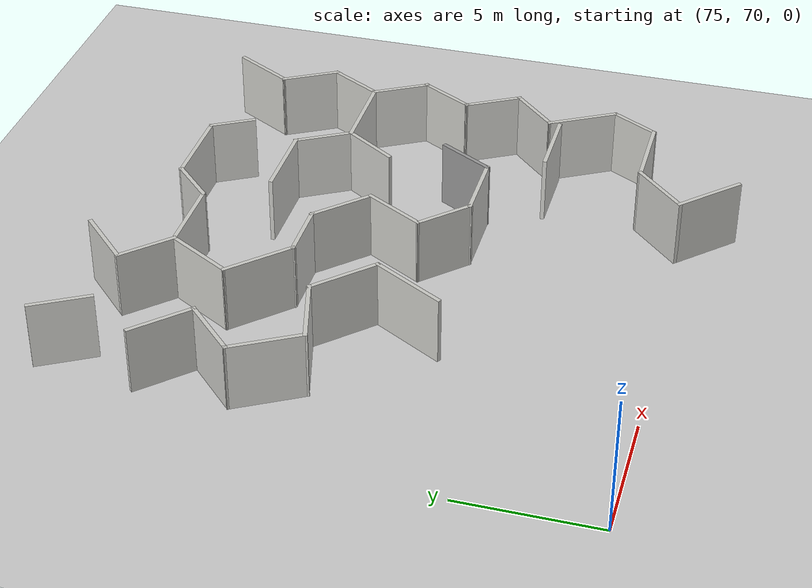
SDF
<sdf version="1.6">
 <world name="default">
  <model name="ground_plane">
   <pose>50 50 0 0 -0 0</pose>
   <static>1</static>
   <link name="link">
    <collision name="collision">
     <geometry><plane><normal>0 0 1</normal><size>100 100</size></plane></geometry>
     <surface><friction><ode><mu>100</mu><mu2>50</mu2></ode></friction></surface>
    </collision>
    <visual name="visual">
     <cast_shadows>0</cast_shadows>
     <geometry><plane><normal>0 0 1</normal><size>100 100</size></plane></geometry>
     <material>
      <script><uri>file://media/materials/scripts/gazebo.material</uri><name>Gazebo/Grey</name></script>
     </material>
    </visual>
   </link>
  </model>
  <model name="maze_1_0">
   <pose>55.5762 81.9377 0 0 -0 3.14</pose>
   <link name="Wall_107">
    <collision name="Wall_107_Collision">
     <geometry><box><size>2.25 0.15 2.5</size></box></geometry>
     <pose>0 0 1.25 0 -0 0</pose>
    </collision>
    <visual name="Wall_107_Visual">
     <pose>0 0 1.25 0 -0 0</pose>
     <geometry><box><size>2.25 0.15 2.5</size></box></geometry>
     <material>
      <script><uri>file://media/materials/scripts/gazebo.material</uri><name>Gazebo/CeilingTiled</name></script>
      <ambient>1 1 1 1</ambient>
     </material>
     <meta><layer>0</layer></meta>
    </visual>
    <pose>-22.6837 -7.08881 0 0 -0 -1.0472</pose>
   </link>
   <link name="Wall_115">
    <collision name="Wall_115_Collision">
     <geometry><box><size>2.5 0.15 2.5</size></box></geometry>
     <pose>0 0 1.25 0 -0 0</pose>
    </collision>
    <visual name="Wall_115_Visual">
     <pose>0 0 1.25 0 -0 0</pose>
     <geometry><box><size>2.5 0.15 2.5</size></box></geometry>
     <material>
      <script><uri>file://media/materials/scripts/gazebo.material</uri><name>Gazebo/CeilingTiled</name></script>
      <ambient>1 1 1 1</ambient>
     </material>
     <meta><layer>0</layer></meta>
    </visual>
    <pose>-22.6341 -3.53644 0 0 -0 2.35619</pose>
   </link>
   <link name="Wall_116">
    <collision name="Wall_116_Collision">
     <geometry><box><size>2.5 0.15 2.5</size></box></geometry>
     <pose>0 0 1.25 0 -0 0</pose>
    </collision>
    <visual name="Wall_116_Visual">
     <pose>0 0 1.25 0 -0 0</pose>
     <geometry><box><size>2.5 0.15 2.5</size></box></geometry>
     <material>
      <script><uri>file://media/materials/scripts/gazebo.material</uri><name>Gazebo/CeilingTiled</name></script>
      <ambient>1 1 1 1</ambient>
     </material>
     <meta><layer>0</layer></meta>
    </visual>
    <pose>-22.6341 -1.87474 0 0 -0 0.785398</pose>
   </link>
   <link name="Wall_117">
    <collision name="Wall_117_Collision">
     <geometry><box><size>2.75 0.15 2.5</size></box></geometry>
     <pose>0 0 1.25 0 -0 0</pose>
    </collision>
    <visual name="Wall_117_Visual">
     <pose>0 0 1.25 0 -0 0</pose>
     <geometry><box><size>2.75 0.15 2.5</size></box></geometry>
     <material>
      <script><uri>file://media/materials/scripts/gazebo.material</uri><name>Gazebo/CeilingTiled</name></script>
      <ambient>1 1 1 1</ambient>
     </material>
     <meta><layer>0</layer></meta>
    </visual>
    <pose>-22.4533 0.081949 0 0 -0 2.0944</pose>
   </link>
   <link name="Wall_118">
    <collision name="Wall_118_Collision">
     <geometry><box><size>2.75 0.15 2.5</size></box></geometry>
     <pose>0 0 1.25 0 -0 0</pose>
    </collision>
    <visual name="Wall_118_Visual">
     <pose>0 0 1.25 0 -0 0</pose>
     <geometry><box><size>2.75 0.15 2.5</size></box></geometry>
     <material>
      <script><uri>file://media/materials/scripts/gazebo.material</uri><name>Gazebo/CeilingTiled</name></script>
      <ambient>1 1 1 1</ambient>
     </material>
     <meta><layer>0</layer></meta>
    </visual>
    <pose>-24.359 0.871317 0 0 -0 -2.87979</pose>
   </link>
   <link name="Wall_119">
    <collision name="Wall_119_Collision">
     <geometry><box><size>2.75 0.15 2.5</size></box></geometry>
     <pose>0 0 1.25 0 -0 0</pose>
    </collision>
    <visual name="Wall_119_Visual">
     <pose>0 0 1.25 0 -0 0</pose>
     <geometry><box><size>2.75 0.15 2.5</size></box></geometry>
     <material>
      <script><uri>file://media/materials/scripts/gazebo.material</uri><name>Gazebo/CeilingTiled</name></script>
      <ambient>1 1 1 1</ambient>
     </material>
     <meta><layer>0</layer></meta>
    </visual>
    <pose>-26.5339 1.45409 0 0 -0 2.35619</pose>
   </link>
   <link name="Wall_120">
    <collision name="Wall_120_Collision">
     <geometry><box><size>3 0.15 2.5</size></box></geometry>
     <pose>0 0 1.25 0 -0 0</pose>
    </collision>
    <visual name="Wall_120_Visual">
     <pose>0 0 1.25 0 -0 0</pose>
     <geometry><box><size>3 0.15 2.5</size></box></geometry>
     <material>
      <script><uri>file://media/materials/scripts/gazebo.material</uri><name>Gazebo/CeilingTiled</name></script>
      <ambient>1 1 1 1</ambient>
     </material>
     <meta><layer>0</layer></meta>
    </visual>
    <pose>-26.7407 3.60742 0 0 -0 1.0472</pose>
   </link>
   <link name="Wall_62">
    <collision name="Wall_62_Collision">
     <geometry><box><size>2.5 0.15 2.5</size></box></geometry>
     <pose>0 0 1.25 0 -0 0</pose>
    </collision>
    <visual name="Wall_62_Visual">
     <pose>0 0 1.25 0 -0 0</pose>
     <geometry><box><size>2.5 0.15 2.5</size></box></geometry>
     <material>
      <script><uri>file://media/materials/scripts/gazebo.material</uri><name>Gazebo/CeilingTiled</name></script>
      <ambient>1 1 1 1</ambient>
     </material>
     <meta><layer>0</layer></meta>
    </visual>
    <pose>-38.9155 -5.5485 0 0 -0 1.0472</pose>
   </link>
   <link name="Wall_63">
    <collision name="Wall_63_Collision">
     <geometry><box><size>2.25 0.15 2.5</size></box></geometry>
     <pose>0 0 1.25 0 -0 0</pose>
    </collision>
    <visual name="Wall_63_Visual">
     <pose>0 0 1.25 0 -0 0</pose>
     <geometry><box><size>2.25 0.15 2.5</size></box></geometry>
     <material>
      <script><uri>file://media/materials/scripts/gazebo.material</uri><name>Gazebo/CeilingTiled</name></script>
      <ambient>1 1 1 1</ambient>
     </material>
     <meta><layer>0</layer></meta>
    </visual>
    <pose>-38.853 -3.6216 0 0 -0 2.0944</pose>
   </link>
   <link name="Wall_64">
    <collision name="Wall_64_Collision">
     <geometry><box><size>2.25 0.15 2.5</size></box></geometry>
     <pose>0 0 1.25 0 -0 0</pose>
    </collision>
    <visual name="Wall_64_Visual">
     <pose>0 0 1.25 0 -0 0</pose>
     <geometry><box><size>2.25 0.15 2.5</size></box></geometry>
     <material>
      <script><uri>file://media/materials/scripts/gazebo.material</uri><name>Gazebo/CeilingTiled</name></script>
      <ambient>1 1 1 1</ambient>
     </material>
     <meta><layer>0</layer></meta>
    </visual>
    <pose>-38.853 -1.80294 0 0 -0 1.0472</pose>
   </link>
   <link name="Wall_65">
    <collision name="Wall_65_Collision">
     <geometry><box><size>3.25 0.15 2.5</size></box></geometry>
     <pose>0 0 1.25 0 -0 0</pose>
    </collision>
    <visual name="Wall_65_Visual">
     <pose>0 0 1.25 0 -0 0</pose>
     <geometry><box><size>3.25 0.15 2.5</size></box></geometry>
     <material>
      <script><uri>file://media/materials/scripts/gazebo.material</uri><name>Gazebo/CeilingTiled</name></script>
      <ambient>1 1 1 1</ambient>
     </material>
     <meta><layer>0</layer></meta>
    </visual>
    <pose>-36.778 -0.893615 0 0 -0 0</pose>
   </link>
   <link name="Wall_66">
    <collision name="Wall_66_Collision">
     <geometry><box><size>2.25 0.15 2.5</size></box></geometry>
     <pose>0 0 1.25 0 -0 0</pose>
    </collision>
    <visual name="Wall_66_Visual">
     <pose>0 0 1.25 0 -0 0</pose>
     <geometry><box><size>2.25 0.15 2.5</size></box></geometry>
     <material>
      <script><uri>file://media/materials/scripts/gazebo.material</uri><name>Gazebo/CeilingTiled</name></script>
      <ambient>1 1 1 1</ambient>
     </material>
     <meta><layer>0</layer></meta>
    </visual>
    <pose>-34.703 -1.80294 0 0 -0 -1.0472</pose>
   </link>
   <link name="Wall_67">
    <collision name="Wall_67_Collision">
     <geometry><box><size>3 0.15 2.5</size></box></geometry>
     <pose>0 0 1.25 0 -0 0</pose>
    </collision>
    <visual name="Wall_67_Visual">
     <pose>0 0 1.25 0 -0 0</pose>
     <geometry><box><size>3 0.15 2.5</size></box></geometry>
     <material>
      <script><uri>file://media/materials/scripts/gazebo.material</uri><name>Gazebo/CeilingTiled</name></script>
      <ambient>1 1 1 1</ambient>
     </material>
     <meta><layer>0</layer></meta>
    </visual>
    <pose>-32.753 -2.71227 0 0 -0 0</pose>
   </link>
   <link name="Wall_69">
    <collision name="Wall_69_Collision">
     <geometry><box><size>2.3062 0.15 2.5</size></box></geometry>
     <pose>0 0 1.25 0 -0 0</pose>
    </collision>
    <visual name="Wall_69_Visual">
     <pose>0 0 1.25 0 -0 0</pose>
     <geometry><box><size>2.3062 0.15 2.5</size></box></geometry>
     <material>
      <script><uri>file://media/materials/scripts/gazebo.material</uri><name>Gazebo/CeilingTiled</name></script>
      <ambient>1 1 1 1</ambient>
     </material>
     <meta><layer>0</layer></meta>
    </visual>
    <pose>-34.6295 0.003073 0 0 -0 -2.15938</pose>
   </link>
   <link name="Wall_71">
    <collision name="Wall_71_Collision">
     <geometry><box><size>2.25 0.15 2.5</size></box></geometry>
     <pose>0 0 1.25 0 -0 0</pose>
    </collision>
    <visual name="Wall_71_Visual">
     <pose>0 0 1.25 0 -0 0</pose>
     <geometry><box><size>2.25 0.15 2.5</size></box></geometry>
     <material>
      <script><uri>file://media/materials/scripts/gazebo.material</uri><name>Gazebo/CeilingTiled</name></script>
      <ambient>1 1 1 1</ambient>
     </material>
     <meta><layer>0</layer></meta>
    </visual>
    <pose>-38.853 0.015712 0 0 -0 2.0944</pose>
   </link>
   <link name="Wall_72">
    <collision name="Wall_72_Collision">
     <geometry><box><size>2.25 0.15 2.5</size></box></geometry>
     <pose>0 0 1.25 0 -0 0</pose>
    </collision>
    <visual name="Wall_72_Visual">
     <pose>0 0 1.25 0 -0 0</pose>
     <geometry><box><size>2.25 0.15 2.5</size></box></geometry>
     <material>
      <script><uri>file://media/materials/scripts/gazebo.material</uri><name>Gazebo/CeilingTiled</name></script>
      <ambient>1 1 1 1</ambient>
     </material>
     <meta><layer>0</layer></meta>
    </visual>
    <pose>-38.853 1.83437 0 0 -0 1.0472</pose>
   </link>
   <link name="Wall_73">
    <collision name="Wall_73_Collision">
     <geometry><box><size>2.25 0.15 2.5</size></box></geometry>
     <pose>0 0 1.25 0 -0 0</pose>
    </collision>
    <visual name="Wall_73_Visual">
     <pose>0 0 1.25 0 -0 0</pose>
     <geometry><box><size>2.25 0.15 2.5</size></box></geometry>
     <material>
      <script><uri>file://media/materials/scripts/gazebo.material</uri><name>Gazebo/CeilingTiled</name></script>
      <ambient>1 1 1 1</ambient>
     </material>
     <meta><layer>0</layer></meta>
    </visual>
    <pose>-38.853 3.65302 0 0 -0 2.0944</pose>
   </link>
   <link name="Wall_74">
    <collision name="Wall_74_Collision">
     <geometry><box><size>2.25 0.15 2.5</size></box></geometry>
     <pose>0 0 1.25 0 -0 0</pose>
    </collision>
    <visual name="Wall_74_Visual">
     <pose>0 0 1.25 0 -0 0</pose>
     <geometry><box><size>2.25 0.15 2.5</size></box></geometry>
     <material>
      <script><uri>file://media/materials/scripts/gazebo.material</uri><name>Gazebo/CeilingTiled</name></script>
      <ambient>1 1 1 1</ambient>
     </material>
     <meta><layer>0</layer></meta>
    </visual>
    <pose>-38.6356 5.30481 0 0 -0 0.785398</pose>
   </link>
   <link name="Wall_75">
    <collision name="Wall_75_Collision">
     <geometry><box><size>2.75 0.15 2.5</size></box></geometry>
     <pose>0 0 1.25 0 -0 0</pose>
    </collision>
    <visual name="Wall_75_Visual">
     <pose>0 0 1.25 0 -0 0</pose>
     <geometry><box><size>2.75 0.15 2.5</size></box></geometry>
     <material>
      <script><uri>file://media/materials/scripts/gazebo.material</uri><name>Gazebo/CeilingTiled</name></script>
      <ambient>1 1 1 1</ambient>
     </material>
     <meta><layer>0</layer></meta>
    </visual>
    <pose>-38.5431 7.1731 0 0 -0 2.0944</pose>
   </link>
   <link name="Wall_76">
    <collision name="Wall_76_Collision">
     <geometry><box><size>2 0.15 2.5</size></box></geometry>
     <pose>0 0 1.25 0 -0 0</pose>
    </collision>
    <visual name="Wall_76_Visual">
     <pose>0 0 1.25 0 -0 0</pose>
     <geometry><box><size>2 0.15 2.5</size></box></geometry>
     <material>
      <script><uri>file://media/materials/scripts/gazebo.material</uri><name>Gazebo/CeilingTiled</name></script>
      <ambient>1 1 1 1</ambient>
     </material>
     <meta><layer>0</layer></meta>
    </visual>
    <pose>-38.7306 9.10001 0 0 -0 1.0472</pose>
   </link>
   <link name="Wall_77">
    <collision name="Wall_77_Collision">
     <geometry><box><size>3 0.15 2.5</size></box></geometry>
     <pose>0 0 1.25 0 -0 0</pose>
    </collision>
    <visual name="Wall_77_Visual">
     <pose>0 0 1.25 0 -0 0</pose>
     <geometry><box><size>3 0.15 2.5</size></box></geometry>
     <material>
      <script><uri>file://media/materials/scripts/gazebo.material</uri><name>Gazebo/CeilingTiled</name></script>
      <ambient>1 1 1 1</ambient>
     </material>
     <meta><layer>0</layer></meta>
    </visual>
    <pose>-36.8431 9.90108 0 0 -0 0</pose>
   </link>
   <link name="Wall_78">
    <collision name="Wall_78_Collision">
     <geometry><box><size>2.5 0.15 2.5</size></box></geometry>
     <pose>0 0 1.25 0 -0 0</pose>
    </collision>
    <visual name="Wall_78_Visual">
     <pose>0 0 1.25 0 -0 0</pose>
     <geometry><box><size>2.5 0.15 2.5</size></box></geometry>
     <material>
      <script><uri>file://media/materials/scripts/gazebo.material</uri><name>Gazebo/CeilingTiled</name></script>
      <ambient>1 1 1 1</ambient>
     </material>
     <meta><layer>0</layer></meta>
    </visual>
    <pose>-34.5873 10.7319 0 0 -0 0.785398</pose>
   </link>
   <link name="Wall_79">
    <collision name="Wall_79_Collision">
     <geometry><box><size>2.75 0.15 2.5</size></box></geometry>
     <pose>0 0 1.25 0 -0 0</pose>
    </collision>
    <visual name="Wall_79_Visual">
     <pose>0 0 1.25 0 -0 0</pose>
     <geometry><box><size>2.75 0.15 2.5</size></box></geometry>
     <material>
      <script><uri>file://media/materials/scripts/gazebo.material</uri><name>Gazebo/CeilingTiled</name></script>
      <ambient>1 1 1 1</ambient>
     </material>
     <meta><layer>0</layer></meta>
    </visual>
    <pose>-34.6757 12.482 0 0 -0 2.35619</pose>
   </link>
   <link name="Wall_81">
    <collision name="Wall_81_Collision">
     <geometry><box><size>2.75 0.15 2.5</size></box></geometry>
     <pose>0 0 1.25 0 -0 0</pose>
    </collision>
    <visual name="Wall_81_Visual">
     <pose>0 0 1.25 0 -0 0</pose>
     <geometry><box><size>2.75 0.15 2.5</size></box></geometry>
     <material>
      <script><uri>file://media/materials/scripts/gazebo.material</uri><name>Gazebo/CeilingTiled</name></script>
      <ambient>1 1 1 1</ambient>
     </material>
     <meta><layer>0</layer></meta>
    </visual>
    <pose>-36.5515 6.43296 0 0 -0 3.14159</pose>
   </link>
   <link name="Wall_83">
    <collision name="Wall_83_Collision">
     <geometry><box><size>2.25 0.15 2.5</size></box></geometry>
     <pose>0 0 1.25 0 -0 0</pose>
    </collision>
    <visual name="Wall_83_Visual">
     <pose>0 0 1.25 0 -0 0</pose>
     <geometry><box><size>2.25 0.15 2.5</size></box></geometry>
     <material>
      <script><uri>file://media/materials/scripts/gazebo.material</uri><name>Gazebo/Grey</name></script>
      <ambient>1 1 1 1</ambient>
     </material>
     <meta><layer>0</layer></meta>
    </visual>
    <pose>-34.8079 3.59924 0 0 -0 1.0472</pose>
   </link>
   <link name="Wall_84">
    <collision name="Wall_84_Collision">
     <geometry><box><size>2.75 0.15 2.5</size></box></geometry>
     <pose>0 0 1.25 0 -0 0</pose>
    </collision>
    <visual name="Wall_84_Visual">
     <pose>0 0 1.25 0 -0 0</pose>
     <geometry><box><size>2.75 0.15 2.5</size></box></geometry>
     <material>
      <script><uri>file://media/materials/scripts/gazebo.material</uri><name>Gazebo/CeilingTiled</name></script>
      <ambient>1 1 1 1</ambient>
     </material>
     <meta><layer>0</layer></meta>
    </visual>
    <pose>-32.9829 4.50857 0 0 -0 0</pose>
   </link>
   <link name="Wall_85">
    <collision name="Wall_85_Collision">
     <geometry><box><size>2.25 0.15 2.5</size></box></geometry>
     <pose>0 0 1.25 0 -0 0</pose>
    </collision>
    <visual name="Wall_85_Visual">
     <pose>0 0 1.25 0 -0 0</pose>
     <geometry><box><size>2.25 0.15 2.5</size></box></geometry>
     <material>
      <script><uri>file://media/materials/scripts/gazebo.material</uri><name>Gazebo/CeilingTiled</name></script>
      <ambient>1 1 1 1</ambient>
     </material>
     <meta><layer>0</layer></meta>
    </visual>
    <pose>-30.9404 3.76611 0 0 -0 -0.785398</pose>
   </link>
   <link name="Wall_86">
    <collision name="Wall_86_Collision">
     <geometry><box><size>2.5 0.15 2.5</size></box></geometry>
     <pose>0 0 1.25 0 -0 0</pose>
    </collision>
    <visual name="Wall_86_Visual">
     <pose>0 0 1.25 0 -0 0</pose>
     <geometry><box><size>2.5 0.15 2.5</size></box></geometry>
     <material>
      <script><uri>file://media/materials/scripts/gazebo.material</uri><name>Gazebo/CeilingTiled</name></script>
      <ambient>1 1 1 1</ambient>
     </material>
     <meta><layer>0</layer></meta>
    </visual>
    <pose>-30.7855 2.00606 0 0 -0 -2.0944</pose>
   </link>
   <link name="Wall_87">
    <collision name="Wall_87_Collision">
     <geometry><box><size>2.5 0.15 2.5</size></box></geometry>
     <pose>0 0 1.25 0 -0 0</pose>
    </collision>
    <visual name="Wall_87_Visual">
     <pose>0 0 1.25 0 -0 0</pose>
     <geometry><box><size>2.5 0.15 2.5</size></box></geometry>
     <material>
      <script><uri>file://media/materials/scripts/gazebo.material</uri><name>Gazebo/CeilingTiled</name></script>
      <ambient>1 1 1 1</ambient>
     </material>
     <meta><layer>0</layer></meta>
    </visual>
    <pose>-30.5421 0.157634 0 0 -0 -0.785398</pose>
   </link>
   <link name="Wall_88">
    <collision name="Wall_88_Collision">
     <geometry><box><size>2.25 0.15 2.5</size></box></geometry>
     <pose>0 0 1.25 0 -0 0</pose>
    </collision>
    <visual name="Wall_88_Visual">
     <pose>0 0 1.25 0 -0 0</pose>
     <geometry><box><size>2.25 0.15 2.5</size></box></geometry>
     <material>
      <script><uri>file://media/materials/scripts/gazebo.material</uri><name>Gazebo/CeilingTiled</name></script>
      <ambient>1 1 1 1</ambient>
     </material>
     <meta><layer>0</layer></meta>
    </visual>
    <pose>-28.6613 -0.673216 0 0 -0 0</pose>
   </link>
   <link name="Wall_89">
    <collision name="Wall_89_Collision">
     <geometry><box><size>2.75 0.15 2.5</size></box></geometry>
     <pose>0 0 1.25 0 -0 0</pose>
    </collision>
    <visual name="Wall_89_Visual">
     <pose>0 0 1.25 0 -0 0</pose>
     <geometry><box><size>2.75 0.15 2.5</size></box></geometry>
     <material>
      <script><uri>file://media/materials/scripts/gazebo.material</uri><name>Gazebo/CeilingTiled</name></script>
      <ambient>1 1 1 1</ambient>
     </material>
     <meta><layer>0</layer></meta>
    </visual>
    <pose>-26.692 -1.59245 0 0 -0 -0.785398</pose>
   </link>
   <link name="Wall_90">
    <collision name="Wall_90_Collision">
     <geometry><box><size>2.75 0.15 2.5</size></box></geometry>
     <pose>0 0 1.25 0 -0 0</pose>
    </collision>
    <visual name="Wall_90_Visual">
     <pose>0 0 1.25 0 -0 0</pose>
     <geometry><box><size>2.75 0.15 2.5</size></box></geometry>
     <material>
      <script><uri>file://media/materials/scripts/gazebo.material</uri><name>Gazebo/CeilingTiled</name></script>
      <ambient>1 1 1 1</ambient>
     </material>
     <meta><layer>0</layer></meta>
    </visual>
    <pose>-26.4228 -3.63753 0 0 -0 -2.0944</pose>
   </link>
   <link name="Wall_91">
    <collision name="Wall_91_Collision">
     <geometry><box><size>3 0.15 2.5</size></box></geometry>
     <pose>0 0 1.25 0 -0 0</pose>
    </collision>
    <visual name="Wall_91_Visual">
     <pose>0 0 1.25 0 -0 0</pose>
     <geometry><box><size>3 0.15 2.5</size></box></geometry>
     <material>
      <script><uri>file://media/materials/scripts/gazebo.material</uri><name>Gazebo/CeilingTiled</name></script>
      <ambient>1 1 1 1</ambient>
     </material>
     <meta><layer>0</layer></meta>
    </visual>
    <pose>-28.4978 -4.76336 0 0 -0 3.14159</pose>
   </link>
   <link name="Wall_92">
    <collision name="Wall_92_Collision">
     <geometry><box><size>2 0.15 2.5</size></box></geometry>
     <pose>0 0 1.25 0 -0 0</pose>
    </collision>
    <visual name="Wall_92_Visual">
     <pose>0 0 1.25 0 -0 0</pose>
     <geometry><box><size>2 0.15 2.5</size></box></geometry>
     <material>
      <script><uri>file://media/materials/scripts/gazebo.material</uri><name>Gazebo/CeilingTiled</name></script>
      <ambient>1 1 1 1</ambient>
     </material>
     <meta><layer>0</layer></meta>
    </visual>
    <pose>-30.5769 -5.41743 0 0 -0 -2.35619</pose>
   </link>
   <link name="Wall_93">
    <collision name="Wall_93_Collision">
     <geometry><box><size>3.25 0.15 2.5</size></box></geometry>
     <pose>0 0 1.25 0 -0 0</pose>
    </collision>
    <visual name="Wall_93_Visual">
     <pose>0 0 1.25 0 -0 0</pose>
     <geometry><box><size>3.25 0.15 2.5</size></box></geometry>
     <material>
      <script><uri>file://media/materials/scripts/gazebo.material</uri><name>Gazebo/CeilingTiled</name></script>
      <ambient>1 1 1 1</ambient>
     </material>
     <meta><layer>0</layer></meta>
    </visual>
    <pose>-32.7809 -6.07151 0 0 -0 3.14159</pose>
   </link>
   <link name="Wall_94">
    <collision name="Wall_94_Collision">
     <geometry><box><size>1.75 0.15 2.5</size></box></geometry>
     <pose>0 0 1.25 0 -0 0</pose>
    </collision>
    <visual name="Wall_94_Visual">
     <pose>0 0 1.25 0 -0 0</pose>
     <geometry><box><size>1.75 0.15 2.5</size></box></geometry>
     <material>
      <script><uri>file://media/materials/scripts/gazebo.material</uri><name>Gazebo/CeilingTiled</name></script>
      <ambient>1 1 1 1</ambient>
     </material>
     <meta><layer>0</layer></meta>
    </visual>
    <pose>-34.7309 -5.37869 0 0 -0 2.0944</pose>
   </link>
   <link name="Wall_96">
    <collision name="Wall_96_Collision">
     <geometry><box><size>2.25 0.15 2.5</size></box></geometry>
     <pose>0 0 1.25 0 -0 0</pose>
    </collision>
    <visual name="Wall_96_Visual">
     <pose>0 0 1.25 0 -0 0</pose>
     <geometry><box><size>2.25 0.15 2.5</size></box></geometry>
     <material>
      <script><uri>file://media/materials/scripts/gazebo.material</uri><name>Gazebo/CeilingTiled</name></script>
      <ambient>1 1 1 1</ambient>
     </material>
     <meta><layer>0</layer></meta>
    </visual>
    <pose>-26.3303 -5.50582 0 0 -0 -0.785398</pose>
   </link>
   <link name="Wall_97">
    <collision name="Wall_97_Collision">
     <geometry><box><size>2.5 0.15 2.5</size></box></geometry>
     <pose>0 0 1.25 0 -0 0</pose>
    </collision>
    <visual name="Wall_97_Visual">
     <pose>0 0 1.25 0 -0 0</pose>
     <geometry><box><size>2.5 0.15 2.5</size></box></geometry>
     <material>
      <script><uri>file://media/materials/scripts/gazebo.material</uri><name>Gazebo/CeilingTiled</name></script>
      <ambient>1 1 1 1</ambient>
     </material>
     <meta><layer>0</layer></meta>
    </visual>
    <pose>-26.4187 -7.07913 0 0 -0 -2.35619</pose>
   </link>
   <static>1</static>
  </model>
 </world>
</sdf>
